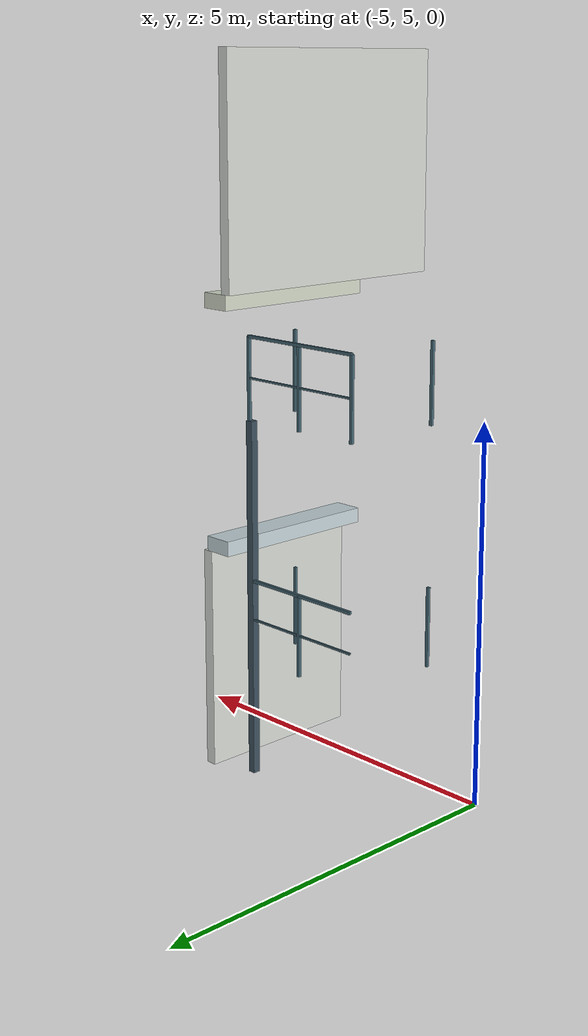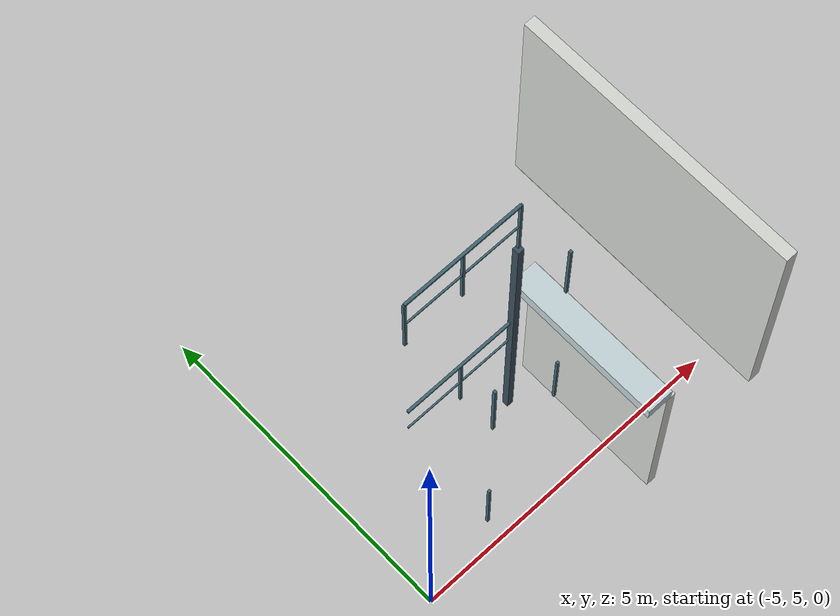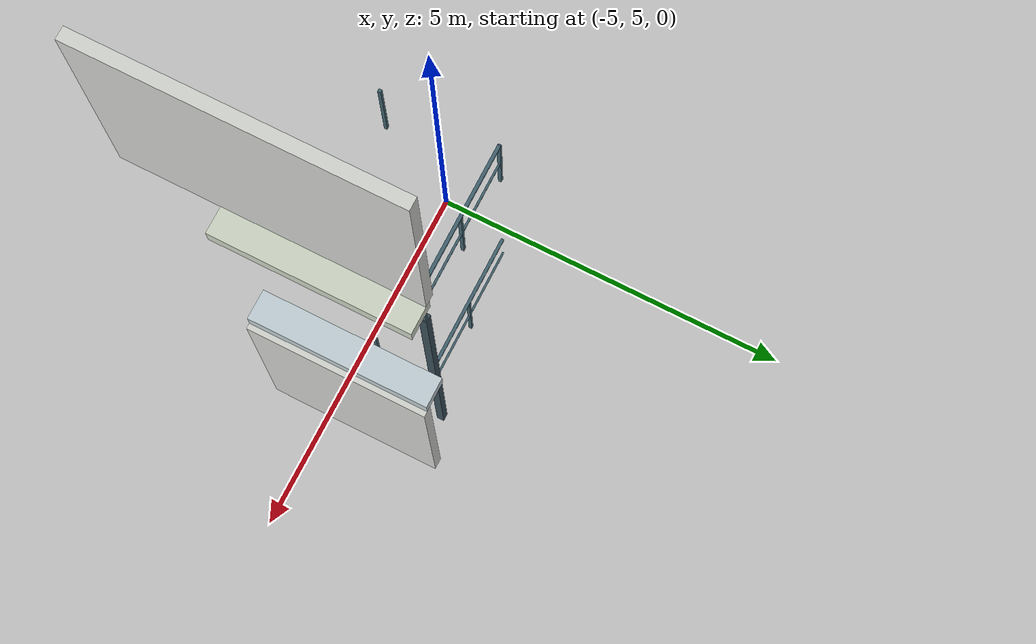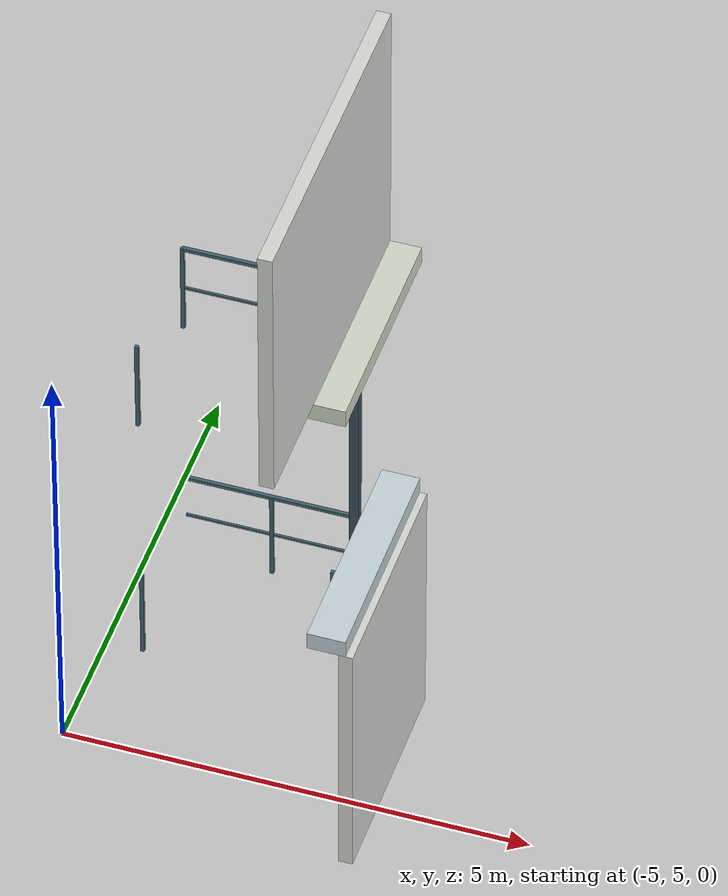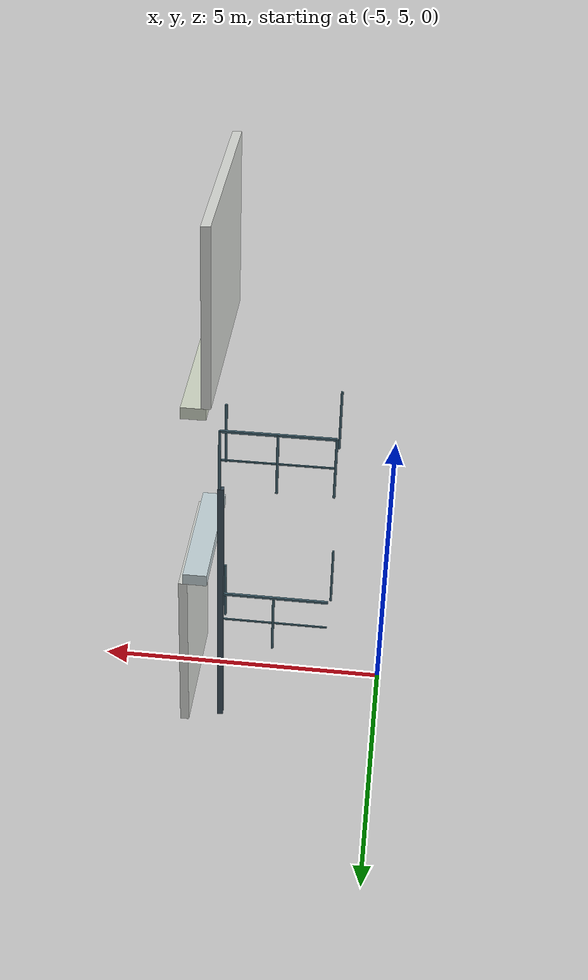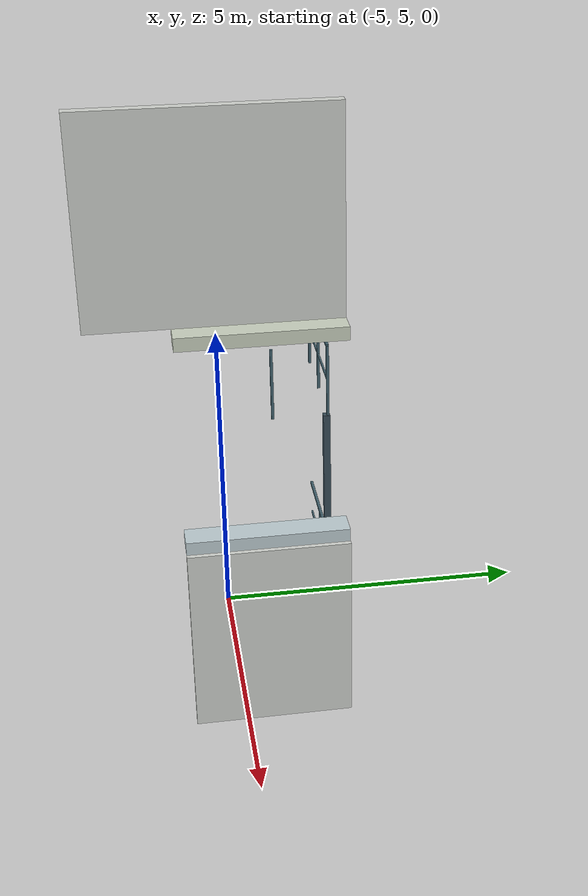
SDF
<sdf version="1.6">
 <world name="three_floor">
  <model name="f1_wall_033">
   <static>true</static>
   <pose>-1.7 5.4 1.5 0 0 0</pose>
   <link name="f1_wall_033_link">
    <collision name="f1_wall_033_collision"><geometry><box><size>0.15 2.4 3</size></box></geometry></collision>
    <visual name="f1_wall_033_visual">
     <geometry><box><size>0.15 2.4 3</size></box></geometry>
     <material><ambient>.84 .85 .83 1</ambient><diffuse>.84 .85 .83 1</diffuse></material>
    </visual>
   </link>
  </model>
  <model name="f2_slab_04">
   <static>true</static>
   <pose>-1.9 5.4 3.1 0 0 0</pose>
   <link name="f2_slab_04_link">
    <collision name="f2_slab_04_collision"><geometry><box><size>0.4 2.4 0.2</size></box></geometry></collision>
    <visual name="f2_slab_04_visual">
     <geometry><box><size>0.4 2.4 0.2</size></box></geometry>
     <material><ambient>0.77 0.83 0.85 1</ambient><diffuse>0.77 0.83 0.85 1</diffuse></material>
    </visual>
   </link>
  </model>
  <model name="f3_slab_04">
   <static>true</static>
   <pose>-1.9 5.4 6.3 0 0 0</pose>
   <link name="f3_slab_04_link">
    <collision name="f3_slab_04_collision"><geometry><box><size>0.4 2.4 0.2</size></box></geometry></collision>
    <visual name="f3_slab_04_visual">
     <geometry><box><size>0.4 2.4 0.2</size></box></geometry>
     <material><ambient>0.82 0.85 0.78 1</ambient><diffuse>0.82 0.85 0.78 1</diffuse></material>
    </visual>
   </link>
  </model>
  <model name="f3_wall_029">
   <static>true</static>
   <pose>-2.1 4.8 7.9 0 0 0</pose>
   <link name="f3_wall_029_link">
    <collision name="f3_wall_029_collision"><geometry><box><size>0.15 3.6 3</size></box></geometry></collision>
    <visual name="f3_wall_029_visual">
     <geometry><box><size>0.15 3.6 3</size></box></geometry>
     <material><ambient>.84 .85 .83 1</ambient><diffuse>.84 .85 .83 1</diffuse></material>
    </visual>
   </link>
  </model>
  <model name="f1_stair_mid_north_guard_top">
   <static>true</static>
   <pose>-3.19 6.37 2.68 0 0 0</pose>
   <link name="f1_stair_mid_north_guard_top_link">
    <collision name="f1_stair_mid_north_guard_top_collision">
     <geometry><box><size>1.82 0.04 0.04</size></box></geometry>
    </collision>
    <visual name="f1_stair_mid_north_guard_top_visual">
     <geometry><box><size>1.82 0.04 0.04</size></box></geometry>
     <material>
      <ambient>0.26 0.39 0.44 1</ambient>
      <diffuse>0.26 0.39 0.44 1</diffuse>
      <specular>0.04 0.04 0.04 1</specular>
     </material>
    </visual>
   </link>
  </model>
  <model name="f1_stair_mid_north_guard_mid">
   <static>true</static>
   <pose>-3.19 6.37 2.15 0 0 0</pose>
   <link name="f1_stair_mid_north_guard_mid_link">
    <collision name="f1_stair_mid_north_guard_mid_collision">
     <geometry><box><size>1.82 0.025 0.025</size></box></geometry>
    </collision>
    <visual name="f1_stair_mid_north_guard_mid_visual">
     <geometry><box><size>1.82 0.025 0.025</size></box></geometry>
     <material>
      <ambient>0.26 0.39 0.44 1</ambient>
      <diffuse>0.26 0.39 0.44 1</diffuse>
      <specular>0.04 0.04 0.04 1</specular>
     </material>
    </visual>
   </link>
  </model>
  <model name="f1_stair_mid_north_guard_post_01">
   <static>true</static>
   <pose>-3.19 6.37 2.14 0 0 0</pose>
   <link name="f1_stair_mid_north_guard_post_01_link">
    <collision name="f1_stair_mid_north_guard_post_01_collision">
     <geometry><box><size>0.04 0.04 1.08</size></box></geometry>
    </collision>
    <visual name="f1_stair_mid_north_guard_post_01_visual">
     <geometry><box><size>0.04 0.04 1.08</size></box></geometry>
     <material>
      <ambient>0.26 0.39 0.44 1</ambient>
      <diffuse>0.26 0.39 0.44 1</diffuse>
      <specular>0.04 0.04 0.04 1</specular>
     </material>
    </visual>
   </link>
  </model>
  <model name="f1_stair_mid_north_guard_post_02">
   <static>true</static>
   <pose>-2.28 6.37 2.14 0 0 0</pose>
   <link name="f1_stair_mid_north_guard_post_02_link">
    <collision name="f1_stair_mid_north_guard_post_02_collision">
     <geometry><box><size>0.04 0.04 1.08</size></box></geometry>
    </collision>
    <visual name="f1_stair_mid_north_guard_post_02_visual">
     <geometry><box><size>0.04 0.04 1.08</size></box></geometry>
     <material>
      <ambient>0.26 0.39 0.44 1</ambient>
      <diffuse>0.26 0.39 0.44 1</diffuse>
      <specular>0.04 0.04 0.04 1</specular>
     </material>
    </visual>
   </link>
  </model>
  <model name="f1_stair_mid_east_guard_post_03">
   <static>true</static>
   <pose>-2.28 5.5725 2.14 0 0 0</pose>
   <link name="f1_stair_mid_east_guard_post_03_link">
    <collision name="f1_stair_mid_east_guard_post_03_collision">
     <geometry><box><size>0.04 0.04 1.08</size></box></geometry>
    </collision>
    <visual name="f1_stair_mid_east_guard_post_03_visual">
     <geometry><box><size>0.04 0.04 1.08</size></box></geometry>
     <material>
      <ambient>0.26 0.39 0.44 1</ambient>
      <diffuse>0.26 0.39 0.44 1</diffuse>
      <specular>0.04 0.04 0.04 1</specular>
     </material>
    </visual>
   </link>
  </model>
  <model name="f1_stair_mid_east_guard_post_04">
   <static>true</static>
   <pose>-2.28 6.37 2.14 0 0 0</pose>
   <link name="f1_stair_mid_east_guard_post_04_link">
    <collision name="f1_stair_mid_east_guard_post_04_collision">
     <geometry><box><size>0.04 0.04 1.08</size></box></geometry>
    </collision>
    <visual name="f1_stair_mid_east_guard_post_04_visual">
     <geometry><box><size>0.04 0.04 1.08</size></box></geometry>
     <material>
      <ambient>0.26 0.39 0.44 1</ambient>
      <diffuse>0.26 0.39 0.44 1</diffuse>
      <specular>0.04 0.04 0.04 1</specular>
     </material>
    </visual>
   </link>
  </model>
  <model name="f1_stair_mid_west_gap_guard_post_01">
   <static>true</static>
   <pose>-4.08 4.93 2.14 0 0 0</pose>
   <link name="f1_stair_mid_west_gap_guard_post_01_link">
    <collision name="f1_stair_mid_west_gap_guard_post_01_collision">
     <geometry><box><size>0.04 0.04 1.08</size></box></geometry>
    </collision>
    <visual name="f1_stair_mid_west_gap_guard_post_01_visual">
     <geometry><box><size>0.04 0.04 1.08</size></box></geometry>
     <material>
      <ambient>0.26 0.39 0.44 1</ambient>
      <diffuse>0.26 0.39 0.44 1</diffuse>
      <specular>0.04 0.04 0.04 1</specular>
     </material>
    </visual>
   </link>
  </model>
  <model name="f2_stair_mid_north_guard_top">
   <static>true</static>
   <pose>-3.19 6.37 5.88 0 0 0</pose>
   <link name="f2_stair_mid_north_guard_top_link">
    <collision name="f2_stair_mid_north_guard_top_collision">
     <geometry><box><size>1.82 0.04 0.04</size></box></geometry>
    </collision>
    <visual name="f2_stair_mid_north_guard_top_visual">
     <geometry><box><size>1.82 0.04 0.04</size></box></geometry>
     <material>
      <ambient>0.26 0.39 0.44 1</ambient>
      <diffuse>0.26 0.39 0.44 1</diffuse>
      <specular>0.04 0.04 0.04 1</specular>
     </material>
    </visual>
   </link>
  </model>
  <model name="f2_stair_mid_north_guard_mid">
   <static>true</static>
   <pose>-3.19 6.37 5.35 0 0 0</pose>
   <link name="f2_stair_mid_north_guard_mid_link">
    <collision name="f2_stair_mid_north_guard_mid_collision">
     <geometry><box><size>1.82 0.025 0.025</size></box></geometry>
    </collision>
    <visual name="f2_stair_mid_north_guard_mid_visual">
     <geometry><box><size>1.82 0.025 0.025</size></box></geometry>
     <material>
      <ambient>0.26 0.39 0.44 1</ambient>
      <diffuse>0.26 0.39 0.44 1</diffuse>
      <specular>0.04 0.04 0.04 1</specular>
     </material>
    </visual>
   </link>
  </model>
  <model name="f2_stair_mid_north_guard_post_00">
   <static>true</static>
   <pose>-4.1 6.37 5.34 0 0 0</pose>
   <link name="f2_stair_mid_north_guard_post_00_link">
    <collision name="f2_stair_mid_north_guard_post_00_collision">
     <geometry><box><size>0.04 0.04 1.08</size></box></geometry>
    </collision>
    <visual name="f2_stair_mid_north_guard_post_00_visual">
     <geometry><box><size>0.04 0.04 1.08</size></box></geometry>
     <material>
      <ambient>0.26 0.39 0.44 1</ambient>
      <diffuse>0.26 0.39 0.44 1</diffuse>
      <specular>0.04 0.04 0.04 1</specular>
     </material>
    </visual>
   </link>
  </model>
  <model name="f2_stair_mid_north_guard_post_01">
   <static>true</static>
   <pose>-3.19 6.37 5.34 0 0 0</pose>
   <link name="f2_stair_mid_north_guard_post_01_link">
    <collision name="f2_stair_mid_north_guard_post_01_collision">
     <geometry><box><size>0.04 0.04 1.08</size></box></geometry>
    </collision>
    <visual name="f2_stair_mid_north_guard_post_01_visual">
     <geometry><box><size>0.04 0.04 1.08</size></box></geometry>
     <material>
      <ambient>0.26 0.39 0.44 1</ambient>
      <diffuse>0.26 0.39 0.44 1</diffuse>
      <specular>0.04 0.04 0.04 1</specular>
     </material>
    </visual>
   </link>
  </model>
  <model name="f2_stair_mid_north_guard_post_02">
   <static>true</static>
   <pose>-2.28 6.37 5.34 0 0 0</pose>
   <link name="f2_stair_mid_north_guard_post_02_link">
    <collision name="f2_stair_mid_north_guard_post_02_collision">
     <geometry><box><size>0.04 0.04 1.08</size></box></geometry>
    </collision>
    <visual name="f2_stair_mid_north_guard_post_02_visual">
     <geometry><box><size>0.04 0.04 1.08</size></box></geometry>
     <material>
      <ambient>0.26 0.39 0.44 1</ambient>
      <diffuse>0.26 0.39 0.44 1</diffuse>
      <specular>0.04 0.04 0.04 1</specular>
     </material>
    </visual>
   </link>
  </model>
  <model name="f2_stair_mid_east_guard_post_03">
   <static>true</static>
   <pose>-2.28 5.5725 5.34 0 0 0</pose>
   <link name="f2_stair_mid_east_guard_post_03_link">
    <collision name="f2_stair_mid_east_guard_post_03_collision">
     <geometry><box><size>0.04 0.04 1.08</size></box></geometry>
    </collision>
    <visual name="f2_stair_mid_east_guard_post_03_visual">
     <geometry><box><size>0.04 0.04 1.08</size></box></geometry>
     <material>
      <ambient>0.26 0.39 0.44 1</ambient>
      <diffuse>0.26 0.39 0.44 1</diffuse>
      <specular>0.04 0.04 0.04 1</specular>
     </material>
    </visual>
   </link>
  </model>
  <model name="f2_stair_mid_east_guard_post_04">
   <static>true</static>
   <pose>-2.28 6.37 5.34 0 0 0</pose>
   <link name="f2_stair_mid_east_guard_post_04_link">
    <collision name="f2_stair_mid_east_guard_post_04_collision">
     <geometry><box><size>0.04 0.04 1.08</size></box></geometry>
    </collision>
    <visual name="f2_stair_mid_east_guard_post_04_visual">
     <geometry><box><size>0.04 0.04 1.08</size></box></geometry>
     <material>
      <ambient>0.26 0.39 0.44 1</ambient>
      <diffuse>0.26 0.39 0.44 1</diffuse>
      <specular>0.04 0.04 0.04 1</specular>
     </material>
    </visual>
   </link>
  </model>
  <model name="f2_stair_mid_west_gap_guard_post_01">
   <static>true</static>
   <pose>-4.08 4.93 5.34 0 0 0</pose>
   <link name="f2_stair_mid_west_gap_guard_post_01_link">
    <collision name="f2_stair_mid_west_gap_guard_post_01_collision">
     <geometry><box><size>0.04 0.04 1.08</size></box></geometry>
    </collision>
    <visual name="f2_stair_mid_west_gap_guard_post_01_visual">
     <geometry><box><size>0.04 0.04 1.08</size></box></geometry>
     <material>
      <ambient>0.26 0.39 0.44 1</ambient>
      <diffuse>0.26 0.39 0.44 1</diffuse>
      <specular>0.04 0.04 0.04 1</specular>
     </material>
    </visual>
   </link>
  </model>
  <model name="f1_stair_support_column_north">
   <static>true</static>
   <pose>-2.3 6.35 2.4 0 0 0</pose>
   <link name="f1_stair_support_column_north_link">
    <collision name="f1_stair_support_column_north_collision">
     <geometry><box><size>0.1 0.1 4.8</size></box></geometry>
    </collision>
    <visual name="f1_stair_support_column_north_visual">
     <geometry><box><size>0.1 0.1 4.8</size></box></geometry>
     <material>
      <ambient>0.23 0.31 0.36 1</ambient>
      <diffuse>0.23 0.31 0.36 1</diffuse>
      <specular>0.04 0.04 0.04 1</specular>
     </material>
    </visual>
   </link>
  </model>
 </world>
</sdf>
